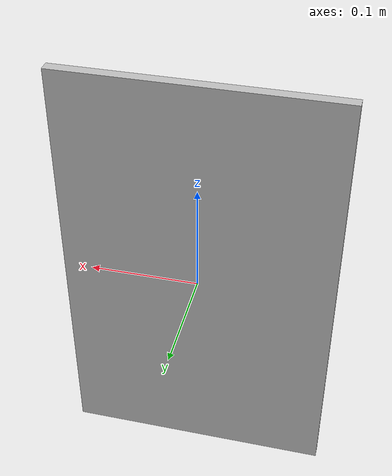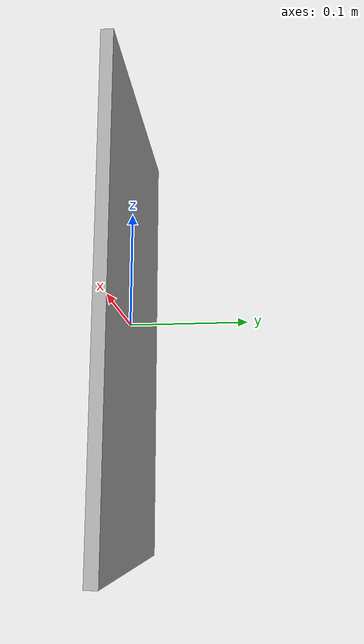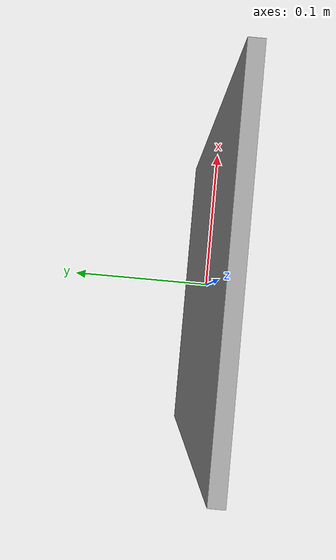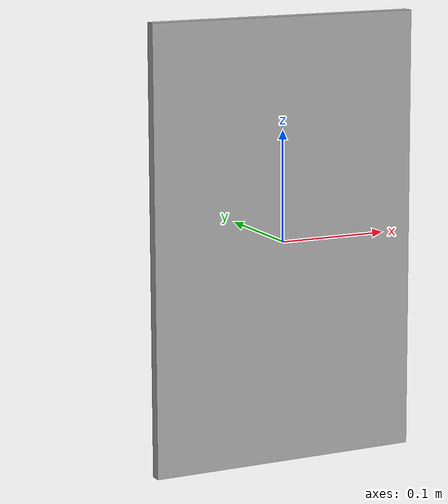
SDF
<?xml version="1.0" encoding="UTF-8"?>
<sdf version="1.4">
   <model name="green_light">
      <static>true</static>
      <link name="link">
         <collision name="collision">
            <geometry>
		<box>
			<size>0.25 0.01 0.4</size>
		</box>
            </geometry>
            <surface>
               <friction>
                  <ode>
                     <mu>100</mu>
                     <mu2>50</mu2>
                  </ode>
               </friction>
            </surface>
         </collision>
         <visual name="visual">
            <cast_shadows>true</cast_shadows>
            <geometry>
		<box>
			<size>0.25 0.01 0.4</size>
		</box>
            </geometry>
            <material>
               <script>
                  <uri>model://green_light/materials/scripts</uri>
                  <uri>model://green_light/materials/textures/</uri>
                  <name>GreenLight/Image</name>
               </script>
            </material>
         </visual>
      </link>
   </model>
</sdf>
